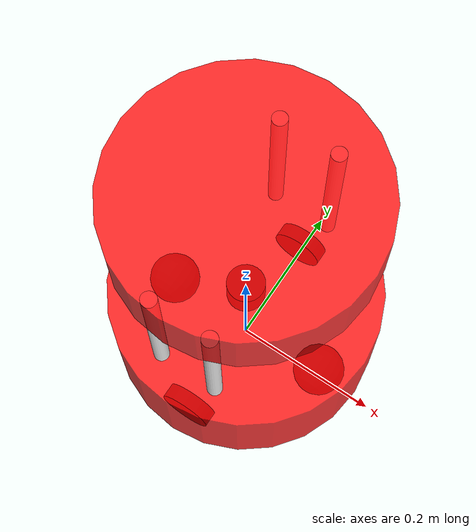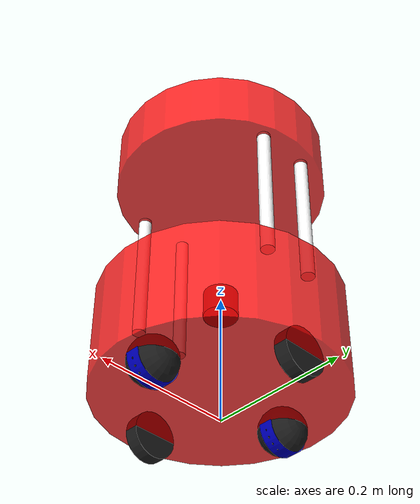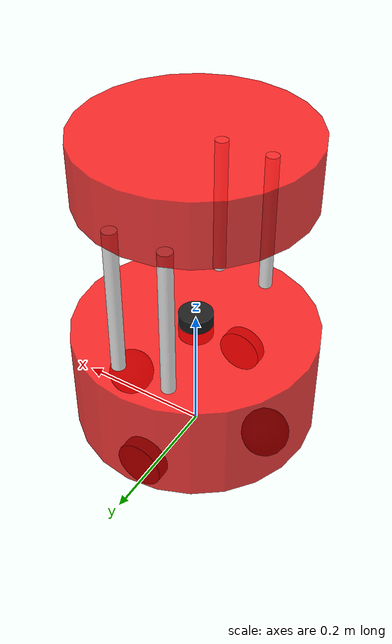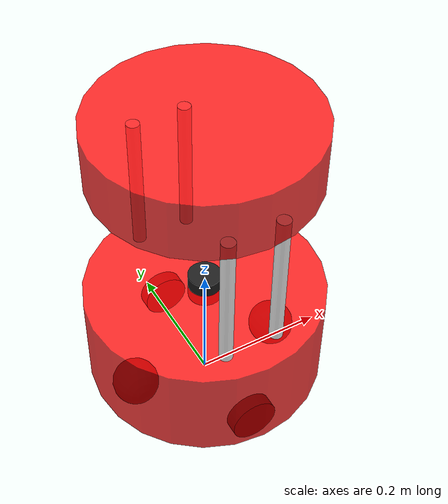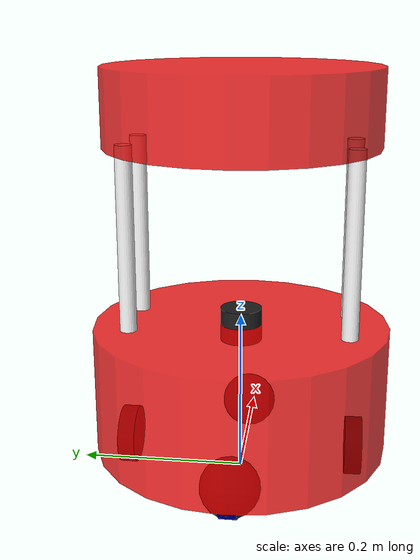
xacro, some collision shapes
<?xml version="1.0"?>
<robot xmlns:xacro="http://www.ros.org/wiki/xacro" name="barista_robot">

<xacro:include filename="$(find barista_robot_description)/xacro/wheel.xacro" />
<xacro:include filename="$(find barista_robot_description)/xacro/standoff.xacro" />
<xacro:include filename="$(find barista_robot_description)/xacro/cup_holder_tray.xacro" />
<xacro:include filename="$(find barista_robot_description)/xacro/laser_scanner.xacro" />

<xacro:arg name="robot_color" default="Red"/>
<xacro:property name = "robot_color" value = "$(arg robot_color)"/>

  <!-- Wheel Left -->
    <xacro:wheel wheel_name="left_wheel" />

  <!-- Wheel Right -->
    <xacro:wheel wheel_name="right_wheel" />

  <!-- Standoff Left rod -->
    <xacro:standoff_rod standoff_rod_name="left_standoff_rod_1" />
    <xacro:standoff_rod standoff_rod_name="left_standoff_rod_2" />

  <!-- Standoff Right rod -->
    <xacro:standoff_rod standoff_rod_name="right_standoff_rod_1" />.
    <xacro:standoff_rod standoff_rod_name="right_standoff_rod_2" />

  <!-- cup_holder_tray -->
    <xacro:cup_holder_tray cup_holder_tray_name="cup_holder_tray" />.

  <!-- cup_holder_tray -->
    <xacro:laser_link laser_link_name="laser_link" />.

<!-- Material -->
    <material name = "Red">
        <color rgba = "1 0 0 0.8 "/>
    </material>

    <material name = "white">
        <color rgba = "1 1 1 1 "/>
    </material>

    <material name = "Blue">
        <color rgba = "0 0 0.9 0.8 "/>
    </material>

    <material name = "black">
        <color rgba = "0.1 0.1 0.1 1 "/>
    </material>

    <gazebo reference="main_body">
        <material>Gazebo/${robot_color}</material>
    </gazebo>

    <gazebo reference="front_yaw_link">
        <material>Gazebo/Blue</material>
    </gazebo>

    <gazebo reference="front_roll_link">
        <material>Gazebo/Red</material>
    </gazebo>

    <gazebo reference="back_yaw_link">
        <material>Gazebo/Blue</material>
    </gazebo>

    <gazebo reference="back_roll_link">
        <material>Gazebo/Red</material>
    </gazebo>

    <gazebo reference="left_standoff_rod_1">
        <material>Gazebo/White</material>
    </gazebo>

    <gazebo reference="right_standoff_rod_1">
        <material>Gazebo/White</material>
    </gazebo>

    <gazebo reference="left_standoff_rod_2">
        <material>Gazebo/White</material>
    </gazebo>

    <gazebo reference="right_standoff_rod_2">
        <material>Gazebo/White</material>
    </gazebo>

    <gazebo reference="cup_holder_tray">
        <material>Gazebo/${robot_color}</material>
    </gazebo>

    <gazebo reference="laser_link">
        <material>Gazebo/Black</material>
    </gazebo>

    <link name = "base_link">
    </link>
<!-- Main body -->
    <link name = "main_body">
        <visual>
            <geometry>
                <cylinder radius = "0.178" length = "0.155"/>
            </geometry>
            <material name = "${robot_color}"/>
        </visual>

        <collision>
            <geometry>
                <cylinder radius = "0.178" length = "0.155"/>
            </geometry>
        </collision>

        <inertial>
            <mass value="8"/>
            <origin rpy="0 0 0" xyz="0 0 0"/>
            <inertia ixx="0.079385" ixy="0" ixz="0" iyy="0.079385" iyz="0" izz="0.126736"/>
        </inertial>

    </link>

    <joint name = "base_main_joint" type = "fixed">
        <origin rpy = "0 0 0" xyz = "0 0 0.1127" />
        <parent link = "base_link" />
        <child link = "main_body" />
    </joint>

<!-- Wheel Joint -->
    <joint name = "main_leftwheel_joint" type = "continuous">
        <origin rpy = "0 0 0" xyz = "0 0.14 -0.0775" />
        <parent link = "main_body" />
        <child link = "left_wheel" />
        <axis rpy="0 0 0" xyz="0 1 0"/>
        <limit effort="10000" velocity="1000"/>
        <joint_properties damping="1.0" friction="1.0"/>
    </joint>

    <joint name = "main_rightwheel_joint" type = "continuous">
        <origin rpy = "0 0 0" xyz = "0 -0.14 -0.0775" />
        <parent link = "main_body" />
        <child link = "right_wheel" />
        <axis rpy="0 0 0" xyz="0 1 0"/>
        <limit effort="10000" velocity="1000"/>
        <joint_properties damping="1.0" friction="1.0"/>
    </joint>

<!-- Caster Wheel Front -->
  <link name="front_yaw_link">
      <visual>
        <origin rpy="0 1.5707 1.5707" xyz="0 0 0"/>
        <geometry>
            <cylinder radius = "0.0352" length = "0.0206"/>
        </geometry>
        <material name = "Blue"/>
      </visual>

      <collision>
        <origin rpy="0 1.5707 1.5707" xyz="0 0 0"/>
        <geometry>
            <cylinder radius = "0.0352" length = "0.0206"/>
        </geometry>
      </collision>

      <inertial>
        <mass value="0.2"/>
        <origin rpy="0 1.5707 1.5707" xyz="0 0 0"/>
        <inertia ixx="0.000069" ixy="0" ixz="0" iyy="0.000124" iyz="0" izz="0.000069"/>
      </inertial>

  </link>

  <joint name="front_yaw_joint" type="continuous">
    <origin rpy="0 0 0" xyz="0.12 0 -0.0775" />
    <parent link="main_body" />
    <child link="front_yaw_link" />
    <axis xyz="0 0 1" />
    <limit effort="1000.0" velocity="100.0" />
    <dynamics damping="0.0" friction="0.1"/>
  </joint>

  <link name="front_roll_link">
      <visual>
        <origin rpy="0 1.5707 1.5707" xyz="0 0 0"/>
        <geometry>
            <cylinder radius = "0.0352" length = "0.0206"/>
        </geometry>
        <material name = "Red"/>
      </visual>

      <collision>
        <origin rpy="0 1.5707 1.5707" xyz="0 0 0"/>
        <geometry>
            <cylinder radius = "0.0352" length = "0.0206"/>
        </geometry>
      </collision>

      <inertial>
        <mass value="0.2"/>
        <origin rpy="0 1.5707 1.5707" xyz="0 0 0"/>
        <inertia ixx="0.000069" ixy="0" ixz="0" iyy="0.000124" iyz="0" izz="0.000069"/>
      </inertial>
  </link>

  <joint name="front_roll_joint" type="continuous">
    <origin rpy="0 0 0" xyz="0 0 0" />
    <parent link="front_yaw_link" />
    <child link="front_roll_link" />
    <axis xyz="1 0 0" />
    <limit effort="1000.0" velocity="100.0" />
    <dynamics damping="0.0" friction="0.1"/>
  </joint>

  <link name="front_pitch_link">
    <visual>
      <origin rpy="0 1.5707 1.5707" xyz="0 0 0"/>
      <geometry>
        <sphere radius="0.0352"/>
      </geometry>
      <material name="black"/>
    </visual>

    <collision>
      <origin rpy="0 1.5707 1.5707" xyz="0 0 0"/>
      <geometry>
        <sphere radius="0.0352"/>
      </geometry>
    </collision>

    <inertial>
        <origin rpy="0 1.5707 1.5707" xyz="0 0 0"/>
        <mass value="0.2"/>
        <inertia ixx="9.9E-05" ixy="0" ixz="0" iyy="9.9E-05" iyz="0" izz="9.9E-05"/>
    </inertial>
  </link>

    <gazebo reference="front_pitch_link">
        <mu1>0.0</mu1>
        <mu2>0.0</mu2>
        <material>Gazebo/Black</material>
    </gazebo>

    <gazebo reference="front_yaw_link">
        <mu1>0.0</mu1>
        <mu2>0.0</mu2>
        <material>Gazebo/Black</material>
    </gazebo>

    <gazebo reference="front_roll_link">
        <mu1>0.0</mu1>
        <mu2>0.0</mu2>
        <material>Gazebo/Black</material>
    </gazebo>

  <joint name="front_pitch_joint" type="continuous">
    <origin rpy="0 0 0" xyz="0 0 0" />
    <parent link="front_roll_link" />
    <child link="front_pitch_link" />
    <axis xyz="0 1 0" />
    <limit effort="1000.0" velocity="100.0" />
    <dynamics damping="0.0" friction="0.1"/>
  </joint>
<!-- Caster Wheel Back -->
  <link name="back_yaw_link">
      <visual>
        <origin rpy="0 1.5707 1.5707" xyz="0 0 0"/>
        <geometry>
            <cylinder radius = "0.0352" length = "0.0206"/>
        </geometry>
        <material name = "Blue"/>
      </visual>

      <collision>
        <origin rpy="0 1.5707 1.5707" xyz="0 0 0"/>
        <geometry>
            <cylinder radius = "0.0352" length = "0.0206"/>
        </geometry>
      </collision>

      <inertial>
        <mass value="0.2"/>
        <origin rpy="0 1.5707 1.5707" xyz="0 0 0"/>
        <inertia ixx="0.000069" ixy="0" ixz="0" iyy="0.000124" iyz="0" izz="0.000069"/>
      </inertial>

  </link>

  <joint name="back_yaw_joint" type="continuous">
    <origin rpy="0 0 0" xyz="-0.12 0 -0.0775" />
    <parent link="main_body" />
    <child link="back_yaw_link" />
    <axis xyz="0 0 1" />
    <limit effort="1000.0" velocity="100.0" />
    <dynamics damping="0.0" friction="0.1"/>
  </joint>

  <link name="back_roll_link">
      <visual>
        <origin rpy="0 1.5707 1.5707" xyz="0 0 0"/>
        <geometry>
            <cylinder radius = "0.0352" length = "0.0206"/>
        </geometry>
        <material name = "Red"/>
      </visual>

      <collision>
        <origin rpy="0 1.5707 1.5707" xyz="0 0 0"/>
        <geometry>
            <cylinder radius = "0.0352" length = "0.0206"/>
        </geometry>
      </collision>

      <inertial>
        <mass value="0.2"/>
        <origin rpy="0 1.5707 1.5707" xyz="0 0 0"/>
        <inertia ixx="0.000069" ixy="0" ixz="0" iyy="0.000124" iyz="0" izz="0.000069"/>
      </inertial>
  </link>

  <joint name="back_roll_joint" type="continuous">
    <origin rpy="0 0 0" xyz="0 0 0" />
    <parent link="back_yaw_link" />
    <child link="back_roll_link" />
    <axis xyz="1 0 0" />
    <limit effort="1000.0" velocity="100.0" />
    <dynamics damping="0.0" friction="0.1"/>
  </joint>

  <link name="back_pitch_link">
    <visual>
      <origin rpy="0 1.5707 1.5707" xyz="0 0 0"/>
      <geometry>
        <sphere radius="0.0352"/>
      </geometry>
      <material name="black"/>
    </visual>

    <collision>
      <origin rpy="0 1.5707 1.5707" xyz="0 0 0"/>
      <geometry>
        <sphere radius="0.0352"/>
      </geometry>
    </collision>

    <inertial>
        <origin rpy="0 1.5707 1.5707" xyz="0 0 0"/>
        <mass value="0.2"/>
        <inertia ixx="9.9E-05" ixy="0" ixz="0" iyy="9.9E-05" iyz="0" izz="9.9E-05"/>
    </inertial>
  </link>

    <gazebo reference="back_pitch_link">
        <mu1>0.0</mu1>
        <mu2>0.0</mu2>
        <material>Gazebo/Black</material>
    </gazebo>

    <gazebo reference="back_yaw_link">
        <mu1>0.0</mu1>
        <mu2>0.0</mu2>
        <material>Gazebo/Black</material>
    </gazebo>

    <gazebo reference="back_roll_link">
        <mu1>0.0</mu1>
        <mu2>0.0</mu2>
        <material>Gazebo/Black</material>
    </gazebo>

  <joint name="back_pitch_joint" type="continuous">
    <origin rpy="0 0 0" xyz="0 0 0" />
    <parent link="back_roll_link" />
    <child link="back_pitch_link" />
    <axis xyz="0 1 0" />
    <limit effort="1000.0" velocity="100.0" />
    <dynamics damping="0.0" friction="0.1"/>
  </joint>
<!-- standoff rods joint  -->
    <joint name = "main_leftrod_joint_1" type = "fixed">
        <origin rpy = "0 0 0" xyz = "0.04 0.13 0.1875" />
        <parent link = "main_body" />
        <child link = "left_standoff_rod_1" />
    </joint>

    <joint name = "main_leftrod_joint_2" type = "fixed">
        <origin rpy = "0 0 0" xyz = "-0.04 0.13 0.1875" />
        <parent link = "main_body" />
        <child link = "left_standoff_rod_2" />
    </joint>

    <joint name = "main_rightrod_joint_1" type = "fixed">
        <origin rpy = "0 0 0" xyz = "0.04 -0.13 0.1875" />
        <parent link = "main_body" />
        <child link = "right_standoff_rod_1" />
    </joint>

    <joint name = "main_rightrod_joint_2" type = "fixed">
        <origin rpy = "0 0 0" xyz = "-0.04 -0.13 0.1875" />
        <parent link = "main_body" />
        <child link = "right_standoff_rod_2" />
    </joint>
<!-- Cup holder tray joint  -->
    <joint name = "main_cupholdertray_joint" type = "fixed">
        <origin rpy = "0 0 0" xyz = "0 0 0.3375" />
        <parent link = "main_body" />
        <child link = "cup_holder_tray" />
    </joint>
<!-- laser joint-->
    <joint name = "main_laserlink_joint" type = "fixed">
        <origin rpy = "0 0 0" xyz = "0 0 0.0775" />
        <parent link = "main_body" />
        <child link = "laser_link" />
    </joint>

<!-- PLUGINS -->
  <xacro:arg name="robot_name" default="robot1"/>
  <xacro:property name = "robot_name" value = "$(arg robot_name)"/>

  <!-- JOINT PUBLISHER -->
  <gazebo>
    <plugin name="barstina_bot_joint_state" filename="libgazebo_ros_joint_state_publisher.so">
      <ros>
          <namespace>${robot_name}</namespace>
          <remapping>~/out:=joint_states</remapping>
      </ros>
      <update_rate>30</update_rate>

      <joint_name>main_leftwheel_joint</joint_name>
      <joint_name>main_rightwheel_joint</joint_name>
      <joint_name>front_yaw_joint</joint_name>
      <joint_name>back_yaw_joint</joint_name>
      <joint_name>front_roll_joint</joint_name>
      <joint_name>back_roll_joint</joint_name>
      <joint_name>front_pitch_joint</joint_name>
      <joint_name>back_pitch_joint</joint_name>

    </plugin>
  </gazebo>

  <!-- Differential drive -->
  <gazebo>
    <plugin filename="libgazebo_ros_diff_drive.so" name="differential_drive_controller">
      <ros>
          <namespace>${robot_name}</namespace>
          <remapping>~/cmd_vel:=cmd_vel</remapping>
      </ros>
      <!-- wheels -->
      <left_joint>main_leftwheel_joint</left_joint>
      <right_joint>main_rightwheel_joint</right_joint>

      <!-- kinematics -->
      <wheel_separation>0.1</wheel_separation>
      <wheel_diameter>0.07</wheel_diameter>

      <!-- limits -->
      <max_wheel_torque>1.0</max_wheel_torque>
      <max_wheel_acceleration>2.0</max_wheel_acceleration>

      <!-- output -->
      <publish_odom>true</publish_odom>
      <publish_odom_tf>true</publish_odom_tf>

      <odometry_frame>${robot_name}/odom</odometry_frame>
      <robot_base_frame>${robot_name}/base_link</robot_base_frame>

    </plugin>
  </gazebo>

    <xacro:arg name="include_laser" default="true" />
    <!-- Laser plugin -->
    <xacro:if value="$(arg include_laser)">
        <gazebo reference="laser_link">
            <sensor name="sensor_ray" type="ray">
                <pose>0 0 0 0 0 0</pose>
                <ray>
                <scan>
                    <horizontal>
                    <samples>200</samples>
                    <resolution>1.0</resolution>
                    <min_angle>-3.14</min_angle>
                    <max_angle>3.14</max_angle>
                    </horizontal>
                </scan>
                <range>
                    <min>0.2</min>
                    <max>5.0</max>
                </range>
                </ray>
                <always_on>true</always_on>
                <visualize>true</visualize>
                <update_rate>100.0</update_rate>
                <plugin name="laser_link" filename="libgazebo_ros_ray_sensor.so">
                <ros>
                    <namespace>${robot_name}</namespace>
                    <remapping>~/out:=scan</remapping>
                </ros>
                    <frame_name>${robot_name}/base_link</frame_name>
                <output_type>sensor_msgs/LaserScan</output_type>
                </plugin>
            </sensor>
        </gazebo>
    </xacro:if>
</robot>

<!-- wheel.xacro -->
<robot xmlns:xacro="http://www.ros.org/wiki/xacro" name="my_box_bot">

    <xacro:macro name="wheel" params="wheel_name">

        <link name = "${wheel_name}">
            <visual>
                <origin rpy="0 1.5707 1.5707" xyz="0 0 0"/>
                <geometry>
                    <cylinder radius = "0.0352" length = "0.0206"/>
                </geometry>
                <material name = "black"/>
            </visual>

            <collision>
                <origin rpy="0 1.5707 1.5707" xyz="0 0 0"/>
                <geometry>
                    <cylinder radius = "0.0352" length = "0.0206"/>
                </geometry>
            </collision>

            <inertial>
                <mass value="0.2"/>
                <origin rpy="0 1.5707 1.5707" xyz="0 0 0"/>
                <inertia ixx="0.000069" ixy="0" ixz="0" iyy="0.000124" iyz="0" izz="0.000069"/>
            </inertial>
        </link>

        <gazebo reference="${wheel_name}">
            <kp>1000000000000000000000000000.0</kp>
            <kd>1000000000000000000000000000.0</kd>
            <mu1>1</mu1>
            <mu2>1</mu2>
            <material>Gazebo/Black</material>
        </gazebo>

    </xacro:macro>

</robot>

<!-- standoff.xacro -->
<robot xmlns:xacro="http://www.ros.org/wiki/xacro" name="my_box_bot">

    <xacro:macro name="standoff_rod" params="standoff_rod_name">

        <link name = "${standoff_rod_name}">
            <visual>
                <origin rpy="0 0 0" xyz="0 0 0"/>
                <geometry>
                    <cylinder radius = "0.01" length = "0.220"/>
                </geometry>
                <material name = "white"/>
            </visual>

            <collision>
                <geometry>
                    <cylinder radius = "0.01" length = "0.220"/>
                </geometry>
            </collision>

            <inertial>
                <mass value="0.2"/>
                <origin rpy="0 0 0" xyz="0 0 0"/>
                <inertia ixx="0.000812" ixy="0" ixz="0" iyy="0.000812" iyz="0" izz="0.00001"/>
            </inertial>
        </link>

    </xacro:macro>

</robot>

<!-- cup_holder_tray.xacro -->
<robot xmlns:xacro="http://www.ros.org/wiki/xacro" name="my_box_bot">

    <xacro:macro name="cup_holder_tray" params="cup_holder_tray_name">

        <link name = "${cup_holder_tray_name}">
            <visual>
                <origin rpy="0 0 0" xyz="0 0 0"/>
                <geometry>
                    <cylinder radius = "0.16" length = "0.09"/>
                </geometry>
                <material name = "${robot_color}"/>
            </visual>

            <collision>
                <geometry>
                    <cylinder radius = "0.16" length = "0.09"/>
                </geometry>
            </collision>

            <inertial>
                <mass value="1"/>
                <origin rpy="0 0 0" xyz="0 0 0"/>
                <inertia ixx="0.007075" ixy="0" ixz="0" iyy="0.007075" iyz="0" izz="0.0128"/>
            </inertial>

        </link>

    </xacro:macro>

</robot>

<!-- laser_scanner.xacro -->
<robot xmlns:xacro="http://www.ros.org/wiki/xacro" name="my_box_bot">

    <xacro:macro name="laser_link" params="laser_link_name">

        <link name = "${laser_link_name}">
            <visual>
                <origin rpy="0 0 0" xyz="0 0 0"/>
                <geometry>
                    <mesh filename="package://barista_robot_description/meshes/hokuyo_urg_04lx.dae" scale = "1 1 1"/>
                </geometry>
            </visual>

            <collision>
                <geometry>
                    <cylinder radius = "0.025" length = "0.04"/>
                </geometry>
            </collision>

            <inertial>
                <mass value="0.2"/>
                <origin rpy="0 0 0" xyz="0 0 0"/>
                <inertia ixx="0.000058" ixy="0" ixz="0" iyy="0.000058" iyz="0" izz="0.000062"/>
            </inertial>

        </link>

    </xacro:macro>

</robot>
